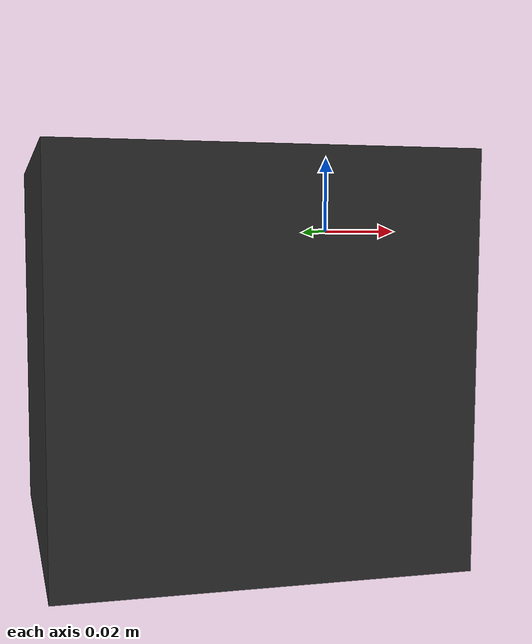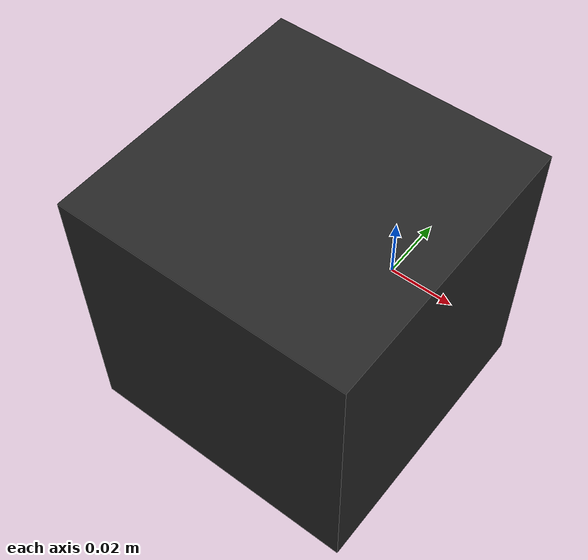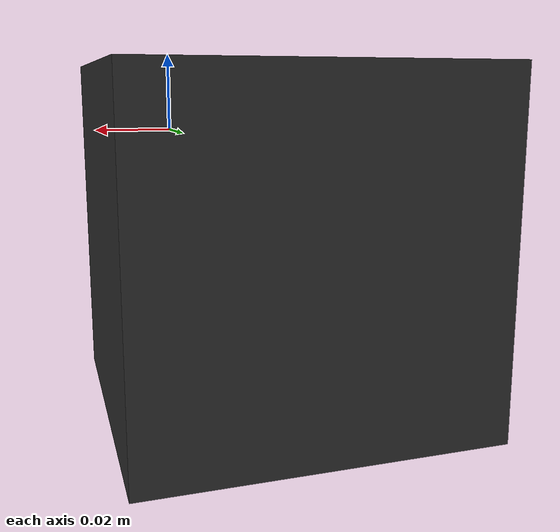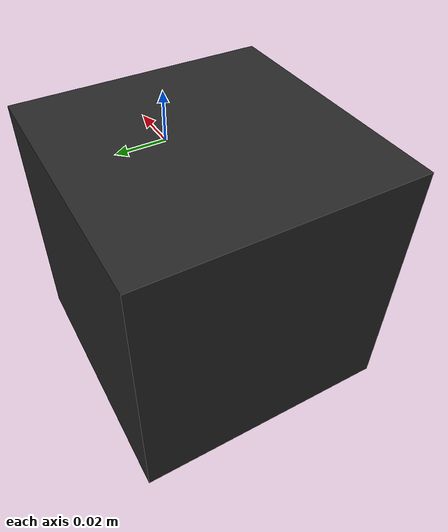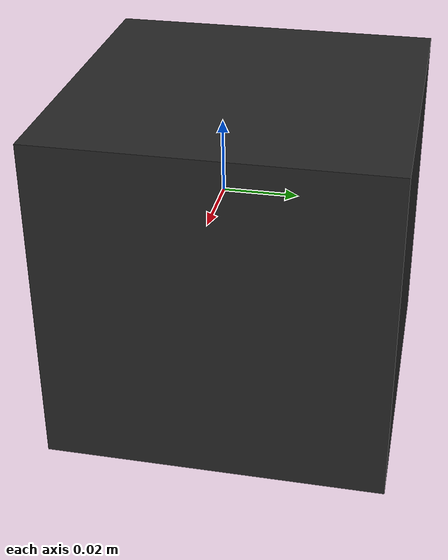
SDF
<?xml version="1.0"?>
<sdf version="1.6">
  <model name="lidar">
    <static>true</static>
    <pose>0 0 0 0 0 0</pose>

    <link name="link">
      <visual name="visual">
        <pose>-0.03 0 -0.032 0 0 0</pose>
          <geometry>
          <box>
            <size>0.1 0.1 0.1 </size>
          </box>
          </geometry>
          <material>
              <ambient>0.15 0.15 0.15 1</ambient>
              <diffuse>0.15 0.15 0.15 1</diffuse>
              <specular>0.1 0.1 0.1 1</specular>
              <emissive>0 0 0 0</emissive>
          </material>
      </visual>

      <sensor type="gpu_lidar" name="lidar">
        <topic>ariac/sensors/lidar/scan</topic>
        <lidar>
          <scan>
            <horizontal>
              <samples>50</samples>
              <resolution>1</resolution>
              <min_angle>-0.75</min_angle>
              <max_angle>0.75</max_angle>
            </horizontal>
            <vertical>
              <samples>50</samples>
              <resolution>1</resolution>
              <min_angle>-0.55</min_angle>
              <max_angle>0.55</max_angle>
            </vertical>
          </scan>
          <range>
            <min>0.2</min>
            <max>1.8</max>
            <resolution>0.001</resolution>
          </range>
          <!-- Using gazebo's noise instead of plugin's -->
          <noise>
            <type>gaussian</type>
            <mean>0.0</mean>
            <stddev>0.001</stddev>
          </noise>
        </lidar>
        <!-- Using gazebo's update rate instead of plugin's -->
        <update_rate>5</update_rate>
        <visualize>true</visualize>

        <plugin name="ariac_sensors::AriacRayPlugin" filename="libAriacRayPlugin.so">
          <gz_topic>ariac/sensors/lidar/scan</gz_topic>
          <sensor_type>lidar</sensor_type>
          <sensor_name>lidar</sensor_name>
          <frame_name>lidar_frame</frame_name>
        </plugin>
      </sensor>

    </link>
  </model>
</sdf>
